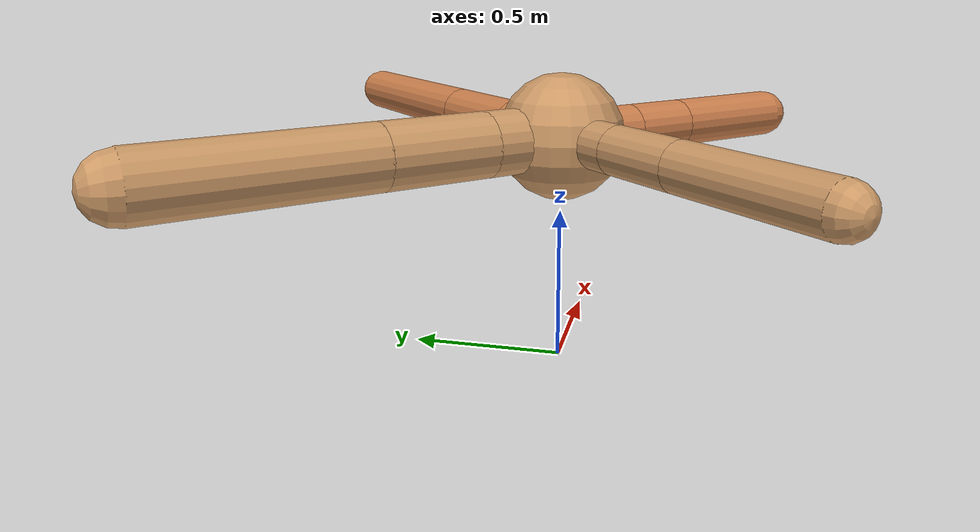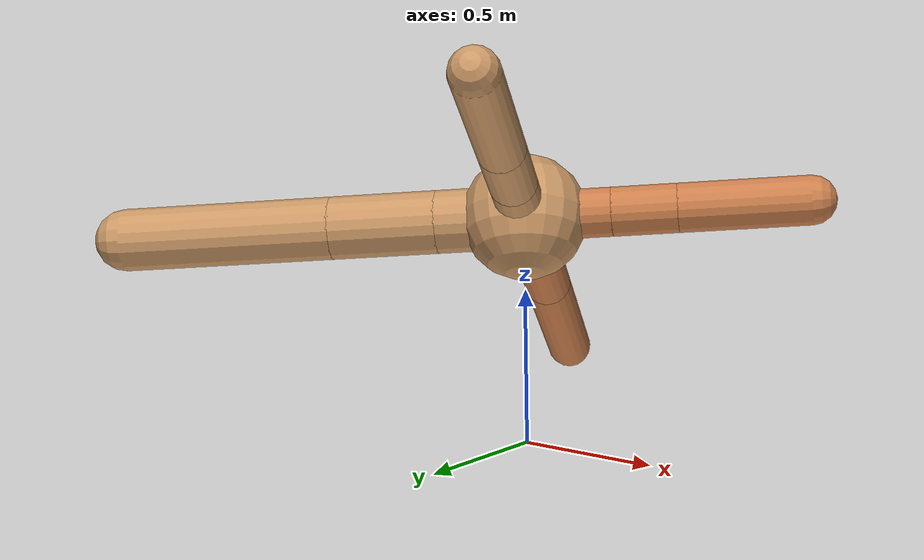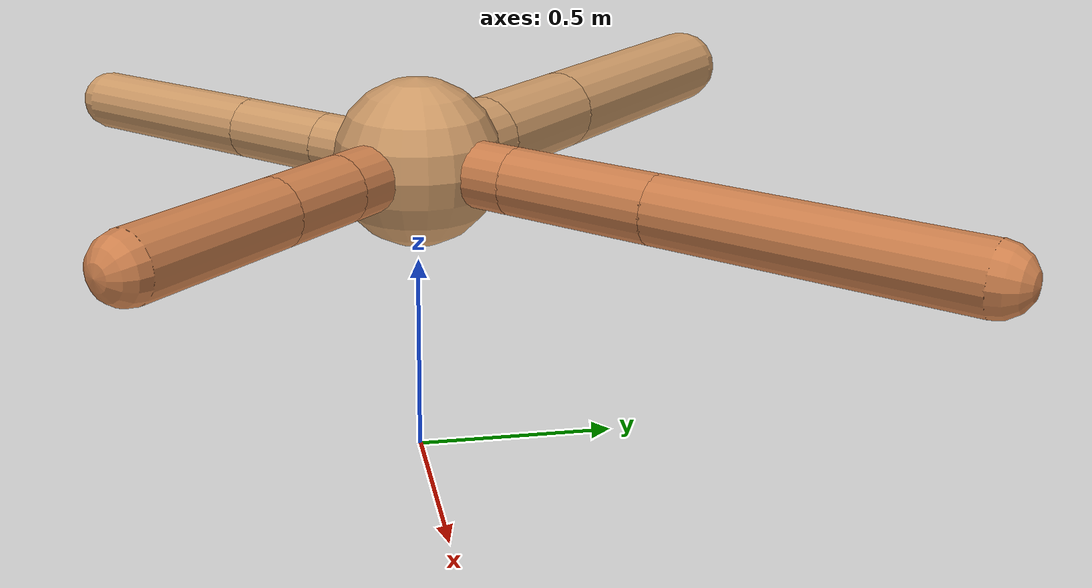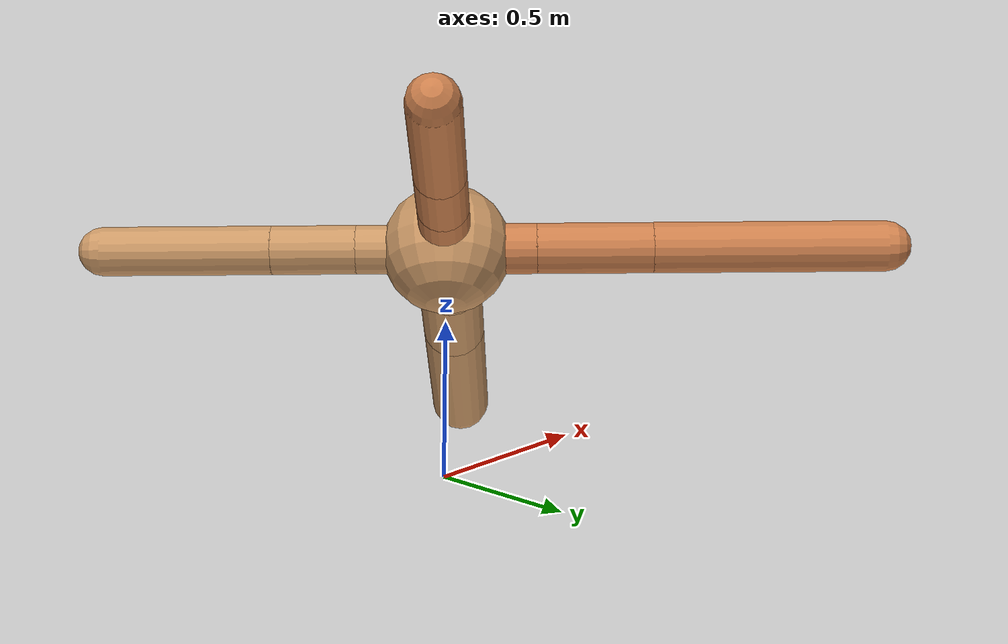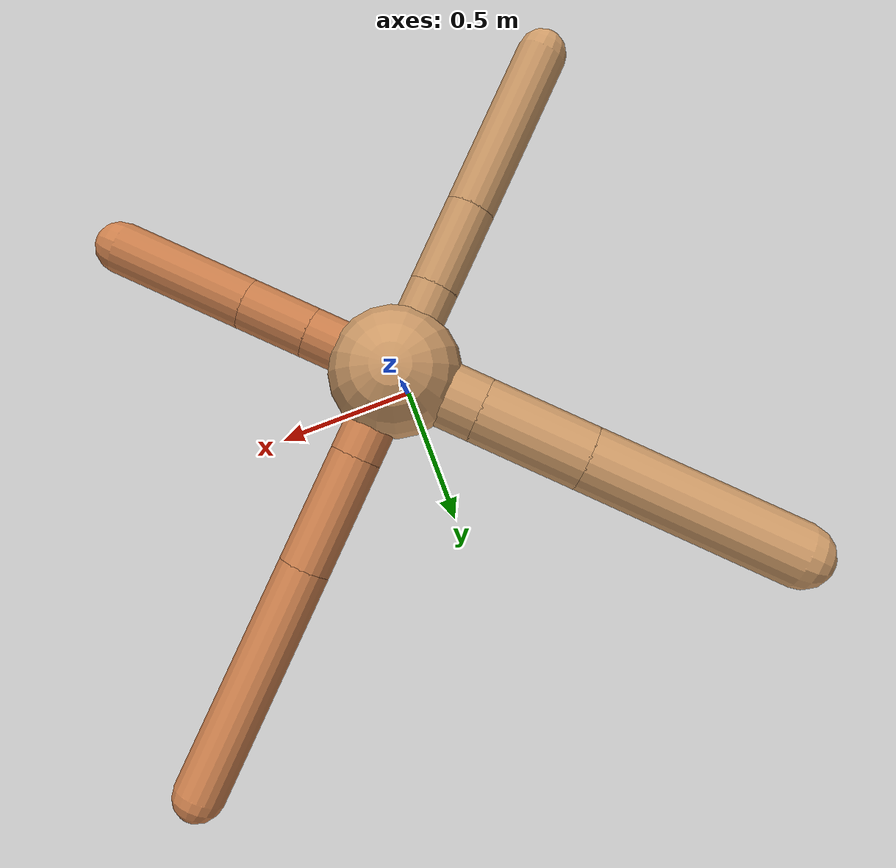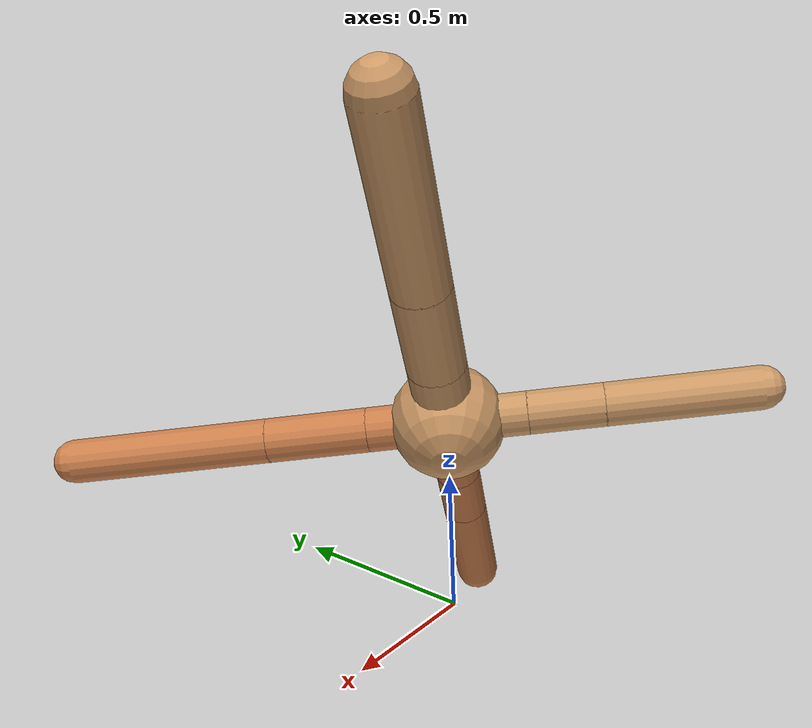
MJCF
<?xml version="1.0" ?>
<mujoco model="ant">

	<compiler angle="degree" coordinate="local" inertiafromgeom="true"/>

	<option integrator="RK4" timestep="0.01"/>

	<custom>

		<numeric data="0.0 0.0 0.55 1.0 0.0 0.0 0.0 0.0 1.0 0.0 -1.0 0.0 -1.0 0.0 1.0" name="init_qpos"/>

	</custom>

	<default>

		<joint armature="1" damping="1" limited="true"/>

		<geom conaffinity="0" condim="3" density="5.0" friction="1.5 0.1 0.1" margin="0.01" rgba="0.8 0.6 0.4 1"/>

	</default>

	<worldbody>

		<body name="torso" pos="0 0 0.75">

			<geom name="torso_geom" pos="0 0 0" size="0.20439523748749205" type="sphere"/>

			<!--joint armature="0" damping="0" limited="false" margin="0.01" name="root" pos="0 0 0" type="free"/-->

			<body name="front_left_leg" pos="0 0 0">

				<geom fromto="0 0 0 0.2 0.2 0" name="aux_1_geom" size="0.0796357808624019" type="capsule" rgba=".8 .5 .3 1"/>

				<body name="aux_1" pos="0.2 0.2 0">

					<joint axis="0 0 1" name="hip_1" pos="0.0 0.0 0.0" range="-40 40" type="hinge"/>

					<geom fromto="0 0 0 0.2569099794324237 0.2569099794324237 0" name="left_leg_geom" size="0.0796357808624019" type="capsule" rgba=".8 .5 .3 1"/>

					<body pos="0.2569099794324237 0.2569099794324237 0" name="front_left_foot">

						<joint axis="-1 1 0" name="ankle_1" pos="0.0 0.0 0.0" range="30 100" type="hinge"/>

						<geom fromto="0 0 0 0.5138199588648474 0.5138199588648474 0" name="left_ankle_geom" size="0.0796357808624019" type="capsule" rgba=".8 .5 .3 1"/>

					</body>

				</body>

			</body>

			<body name="front_right_leg" pos="0 0 0">

				<geom fromto="0 0 0 -0.2 0.2 0" name="aux_2_geom" size="0.10327262406858846" type="capsule"/>

				<body name="aux_2" pos="-0.2 0.2 0">

					<joint axis="0 0 1" name="hip_2" pos="0.0 0.0 0.0" range="-40 40" type="hinge"/>

					<geom fromto="0 0 0 -0.2470679052967042 0.2470679052967042 0" name="right_leg_geom" size="0.10327262406858846" type="capsule"/>

					<body pos="-0.2470679052967042 0.2470679052967042 0" name="front_right_foot">

						<joint axis="1 1 0" name="ankle_2" pos="0.0 0.0 0.0" range="-100 -30" type="hinge"/>

						<geom fromto="0 0 0 -0.4941358105934084 0.4941358105934084 0" name="right_ankle_geom" size="0.10327262406858846" type="capsule"/>

					</body>

				</body>

			</body>

			<body name="left_back_leg" pos="0 0 0">

				<geom fromto="0 0 0 -0.2 -0.2 0" name="aux_3_geom" size="0.07703967576960395" type="capsule"/>

				<body name="aux_3" pos="-0.2 -0.2 0">

					<joint axis="0 0 1" name="hip_3" pos="0.0 0.0 0.0" range="-40 40" type="hinge"/>

					<geom fromto="0 0 0 -0.18807942263777047 -0.18807942263777047 0" name="back_leg_geom" size="0.07703967576960395" type="capsule"/>

					<body pos="-0.18807942263777047 -0.18807942263777047 0" name="left_back_foot">

						<joint axis="-1 1 0" name="ankle_3" pos="0.0 0.0 0.0" range="-100 -30" type="hinge"/>

						<geom fromto="0 0 0 -0.37615884527554094 -0.37615884527554094 0" name="third_ankle_geom" size="0.07703967576960395" type="capsule"/>

					</body>

				</body>

			</body>

			<body name="right_back_leg" pos="0 0 0">

				<geom fromto="0 0 0 0.2 -0.2 0" name="aux_4_geom" size="0.07996111977557087" type="capsule" rgba=".8 .5 .3 1"/>

				<body name="aux_4" pos="0.2 -0.2 0">

					<joint axis="0 0 1" name="hip_4" pos="0.0 0.0 0.0" range="-40 40" type="hinge"/>

					<geom fromto="0 0 0 0.14863457288353282 -0.14863457288353282 0" name="rightback_leg_geom" size="0.07996111977557087" type="capsule" rgba=".8 .5 .3 1"/>

					<body pos="0.14863457288353282 -0.14863457288353282 0" name="right_back_foot">

						<joint axis="1 1 0" name="ankle_4" pos="0.0 0.0 0.0" range="30 100" type="hinge"/>

						<geom fromto="0 0 0 0.29726914576706565 -0.29726914576706565 0" name="fourth_ankle_geom" size="0.07996111977557087" type="capsule" rgba=".8 .5 .3 1"/>

					</body>

				</body>

			</body>

		</body>

	</worldbody>

	<actuator>

		<motor ctrllimited="true" ctrlrange="-1.0 1.0" joint="hip_4" gear="150"/>

		<motor ctrllimited="true" ctrlrange="-1.0 1.0" joint="ankle_4" gear="150"/>

		<motor ctrllimited="true" ctrlrange="-1.0 1.0" joint="hip_1" gear="150"/>

		<motor ctrllimited="true" ctrlrange="-1.0 1.0" joint="ankle_1" gear="150"/>

		<motor ctrllimited="true" ctrlrange="-1.0 1.0" joint="hip_2" gear="150"/>

		<motor ctrllimited="true" ctrlrange="-1.0 1.0" joint="ankle_2" gear="150"/>

		<motor ctrllimited="true" ctrlrange="-1.0 1.0" joint="hip_3" gear="150"/>

		<motor ctrllimited="true" ctrlrange="-1.0 1.0" joint="ankle_3" gear="150"/>

	</actuator>

</mujoco>
